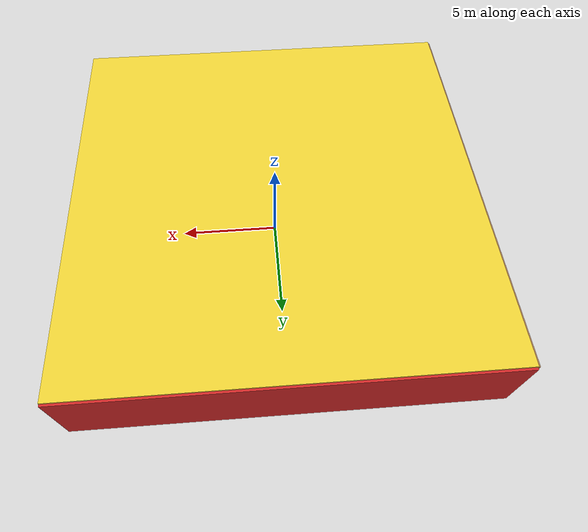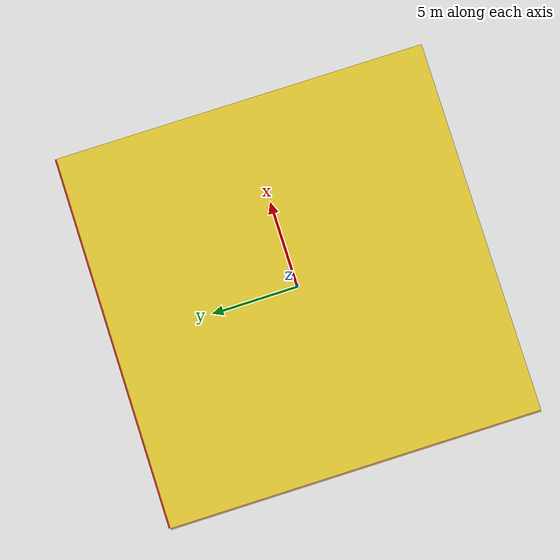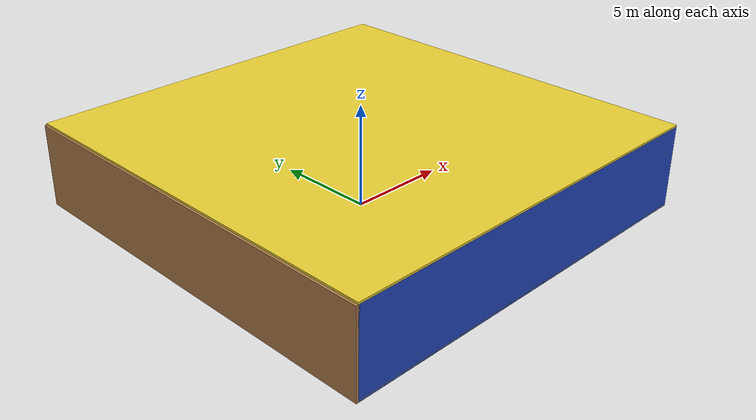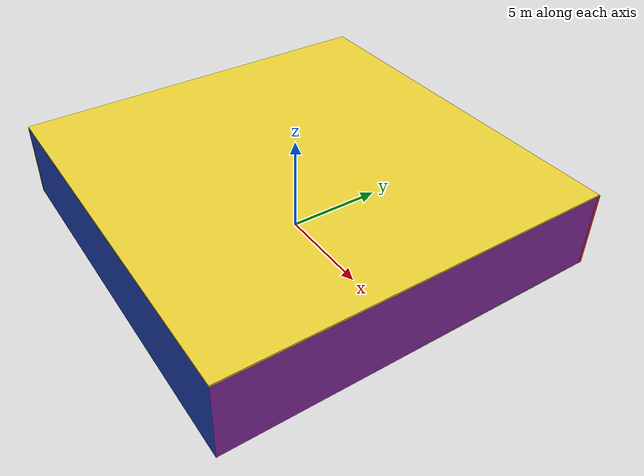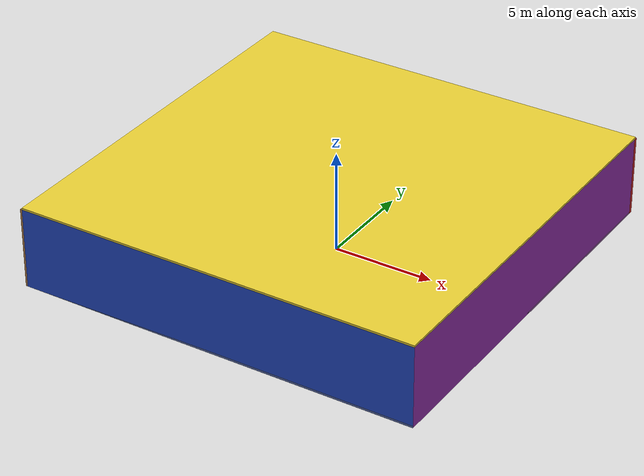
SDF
<sdf version="1.4">
 <world name="default">
  <physics type="ode">
   <max_step_size>0.001</max_step_size>
   <real_time_factor>1</real_time_factor>
   <real_time_update_rate>1000</real_time_update_rate>
   <gravity>0 0 -9.8</gravity>
  </physics>
  <scene><ambient>0.4 0.4 0.4 1</ambient><background>0.7 0.7 0.7 1</background><shadows>1</shadows></scene>
  <model name="Surrounding">
   <static>1</static>
   <link name="Ceiling">
    <collision name="Ceiling_Collision"><geometry><box><size>20 20 0.1</size></box></geometry></collision>
    <visual name="Ceiling_Visual">
     <geometry><box><size>20 20 0.1</size></box></geometry>
     <material>
      <script><uri>file://media/materials/scripts/gazebo.material</uri><name>Gazebo/ZincYellow</name></script>
     </material>
    </visual>
    <pose>0 0 4.05 0 0 0</pose>
   </link>
   <link name="Wall_South">
    <collision name="Wall_South_Collision">
     <geometry><box><size>20 0 4</size></box></geometry>
     <pose>0 0 2 0 -0 0</pose>
    </collision>
    <visual name="Wall_South_Visual">
     <pose>0 0 2 0 -0 0</pose>
     <geometry><box><size>20 0 4</size></box></geometry>
     <material>
      <script><uri>file://media/materials/scripts/gazebo.material</uri><name>Gazebo/BlueGlow</name></script>
     </material>
    </visual>
    <velocity_decay><linear>0</linear><angular>0</angular></velocity_decay>
    <pose>0 -10 0 0 -0 0</pose>
   </link>
   <link name="Wall_East">
    <collision name="Wall_21_Collision">
     <geometry><box><size>20 0 4</size></box></geometry>
     <pose>0 0 2 0 -0 0</pose>
    </collision>
    <visual name="Wall_21_Visual">
     <pose>0 0 2 0 -0 0</pose>
     <geometry><box><size>20 0 4</size></box></geometry>
     <material>
      <script><uri>file://media/materials/scripts/gazebo.material</uri><name>Gazebo/PurpleGlow</name></script>
     </material>
    </visual>
    <velocity_decay><linear>0</linear><angular>0</angular></velocity_decay>
    <pose>10 0 0 0 -0 1.5708</pose>
   </link>
   <link name="Wall_North">
    <collision name="Wall_22_Collision">
     <geometry><box><size>20 0.2 4</size></box></geometry>
     <pose>0 0 2 0 -0 0</pose>
    </collision>
    <visual name="Wall_22_Visual">
     <pose>0 0 2 0 -0 0</pose>
     <geometry><box><size>20 0.2 4</size></box></geometry>
     <material>
      <script><uri>file://media/materials/scripts/gazebo.material</uri><name>Gazebo/Red</name></script>
     </material>
    </visual>
    <velocity_decay><linear>0</linear><angular>0</angular></velocity_decay>
    <pose>0 10 0 0 -0 0</pose>
   </link>
   <link name="Wall_West">
    <collision name="Wall_23_Collision">
     <geometry><box><size>20 0.2 4</size></box></geometry>
     <pose>0 0 2 0 -0 0</pose>
    </collision>
    <visual name="Wall_23_Visual">
     <pose>0 0 2 0 -0 0</pose>
     <geometry><box><size>20 0.2 4</size></box></geometry>
     <material>
      <script><uri>file://media/materials/scripts/gazebo.material</uri><name>Gazebo/WoodFloor</name></script>
     </material>
    </visual>
    <velocity_decay><linear>0</linear><angular>0</angular></velocity_decay>
    <pose>-10 0 0 0 0 -1.5708</pose>
   </link>
   <link name="Ground_link">
    <collision name="collision">
     <pose>0 0 .05 0 -0 0</pose>
     <geometry><box><size>20 20 0.1</size></box></geometry>
    </collision>
    <visual name="visual">
     <pose>0 0 .05 0 -0 0</pose>
     <geometry><box><size>20 20 0.1</size></box></geometry>
     <material>
      <script><uri>file://media/materials/scripts/gazebo.material</uri><name>Gazebo/GreyTransparent</name></script>
     </material>
    </visual>
   </link>
   <static>1</static>
  </model>
  <spherical_coordinates>
   <surface_model>EARTH_WGS84</surface_model>
   <latitude_deg>0</latitude_deg>
   <longitude_deg>0</longitude_deg>
   <elevation>0</elevation>
   <heading_deg>0</heading_deg>
  </spherical_coordinates>
  <light name="lightball_0" type="diffuse">
   <diffuse>0.8 0.8 0.8 1</diffuse>
   <specular>0.2 0.2 0.2 1</specular>
   <attenuation>
    <range>100</range>
    <constant>0.7</constant>
    <linear>0.01</linear>
    <quadratic>0.001</quadratic>
   </attenuation>
   <direction>-0.5 0.1 -0.9</direction>
   <pose>-5.80894387374 1.08245499641 1.51311568054 0 0 0</pose>
  </light>
  <light name="lightball_1" type="diffuse">
   <diffuse>0.8 0.8 0.8 1</diffuse>
   <specular>0.2 0.2 0.2 1</specular>
   <attenuation>
    <range>100</range>
    <constant>0.7</constant>
    <linear>0.01</linear>
    <quadratic>0.001</quadratic>
   </attenuation>
   <direction>-0.5 0.1 -0.9</direction>
   <pose>-7.60871169201 8.4708653568 1.47999151794 0 0 0</pose>
  </light>
  <light name="lightball_2" type="diffuse">
   <diffuse>0.8 0.8 0.8 1</diffuse>
   <specular>0.2 0.2 0.2 1</specular>
   <attenuation>
    <range>100</range>
    <constant>0.7</constant>
    <linear>0.01</linear>
    <quadratic>0.001</quadratic>
   </attenuation>
   <direction>-0.5 0.1 -0.9</direction>
   <pose>-5.24973191949 8.21674738119 3.84630641566 0 0 0</pose>
  </light>
  <light name="lightball_3" type="diffuse">
   <diffuse>0.8 0.8 0.8 1</diffuse>
   <specular>0.2 0.2 0.2 1</specular>
   <attenuation>
    <range>100</range>
    <constant>0.7</constant>
    <linear>0.01</linear>
    <quadratic>0.001</quadratic>
   </attenuation>
   <direction>-0.5 0.1 -0.9</direction>
   <pose>-3.78116634352 0.901314789596 0.845228957179 0 0 0</pose>
  </light>
  <light name="lightball_4" type="diffuse">
   <diffuse>0.8 0.8 0.8 1</diffuse>
   <specular>0.2 0.2 0.2 1</specular>
   <attenuation>
    <range>100</range>
    <constant>0.7</constant>
    <linear>0.01</linear>
    <quadratic>0.001</quadratic>
   </attenuation>
   <direction>-0.5 0.1 -0.9</direction>
   <pose>5.00262585679 6.74235758972 0.624973408892 0 0 0</pose>
  </light>
  <light name="lightball_5" type="diffuse">
   <diffuse>0.8 0.8 0.8 1</diffuse>
   <specular>0.2 0.2 0.2 1</specular>
   <attenuation>
    <range>100</range>
    <constant>0.7</constant>
    <linear>0.01</linear>
    <quadratic>0.001</quadratic>
   </attenuation>
   <direction>-0.5 0.1 -0.9</direction>
   <pose>0.82328385651 -2.2136937865 3.80186408899 0 0 0</pose>
  </light>
  <light name="lightball_6" type="diffuse">
   <diffuse>0.8 0.8 0.8 1</diffuse>
   <specular>0.2 0.2 0.2 1</specular>
   <attenuation>
    <range>100</range>
    <constant>0.7</constant>
    <linear>0.01</linear>
    <quadratic>0.001</quadratic>
   </attenuation>
   <direction>-0.5 0.1 -0.9</direction>
   <pose>4.207474509 3.0202623591 1.93675946884 0 0 0</pose>
  </light>
  <light name="lightball_7" type="diffuse">
   <diffuse>0.8 0.8 0.8 1</diffuse>
   <specular>0.2 0.2 0.2 1</specular>
   <attenuation>
    <range>100</range>
    <constant>0.7</constant>
    <linear>0.01</linear>
    <quadratic>0.001</quadratic>
   </attenuation>
   <direction>-0.5 0.1 -0.9</direction>
   <pose>0.717594014348 -2.43862428678 1.04046598468 0 0 0</pose>
  </light>
  <include>
   <uri>model://textured_shapes</uri>
   <pose>-6.88782756858 -7.36858204159 0 0 0 2.46200180765</pose>
  </include>
  <include><uri>model://cabinet</uri><pose>-4.44804888883 4.75849775293 0 0 0 1.71092969059</pose></include>
  <include><uri>model://table</uri><pose>1.50979001474 -0.762466669193 0 0 0 1.25712021254</pose></include>
  <include><uri>model://cabinet</uri><pose>5.09416027362 -4.08366315281 0 0 0 1.52962189625</pose></include>
  <include>
   <uri>model://textured_shapes</uri>
   <pose>4.00543211593 7.93820043705 0 0 0 1.20981055557</pose>
  </include>
  <include>
   <uri>model://robocup_3Dsim_goal</uri>
   <pose>7.56393463663 -4.44277885114 0 0 0 1.92012618377</pose>
  </include>
 </world>
</sdf>

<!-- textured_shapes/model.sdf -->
<sdf version="1.6">
  <model name="textured_shapes">
    <pose>0 0 0.5 0 0 0</pose>
    <link name="box">
      <pose>0 -1.5 0 0 0 0</pose>
      <collision name="collision">
        <geometry>
          <box>
            <size>1 1 1</size>
          </box>
        </geometry>
      </collision>
      <visual name="visual">
        <geometry>
          <box>
            <size>1 1 1</size>
          </box>
        </geometry>
        <material>
          <script>
            <uri>model://../model_source/models/textured_shapes/materials/scripts</uri>
            <uri>model://../model_source/models/textured_shapes/materials/textures</uri>
            <name>TexturedShape/Squares</name>
          </script>
        </material>
      </visual>
    </link>
    <link name="sphere">
      <collision name="collision">
        <geometry>
          <sphere>
            <radius>0.5</radius>
          </sphere>
        </geometry>
      </collision>
      <visual name="visual">
        <geometry>
          <sphere>
            <radius>0.5</radius>
          </sphere>
        </geometry>
        <material>
          <script>
            <uri>model://../model_source/models/textured_shapes/materials/scripts</uri>
            <uri>model://../model_source/models/textured_shapes/materials/textures</uri>
            <name>TexturedShape/Squares</name>
          </script>
        </material>
      </visual>
    </link>
    <link name="cylinder">
      <pose>0 1.5 0 0 0 0</pose>
      <collision name="collision">
        <geometry>
          <cylinder>
            <radius>0.5</radius>
            <length>1</length>
          </cylinder>
        </geometry>
      </collision>
      <visual name="visual">
        <geometry>
          <cylinder>
            <radius>0.5</radius>
            <length>1</length>
          </cylinder>
        </geometry>
        <material>
          <script>
            <uri>model://../model_source/models/textured_shapes/materials/scripts</uri>
            <uri>model://../model_source/models/textured_shapes/materials/textures</uri>
            <name>TexturedShape/Squares</name>
          </script>
        </material>
      </visual>
    </link>
  </model>
</sdf>

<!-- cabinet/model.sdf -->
<sdf version="1.5">
  <model name="cabinet">
    <static>true</static>
    <link name="cabinet_bottom_plate">
      <inertial>
        <pose>0 0 -1 0 0 0</pose>
        <inertia>
          <ixx>2.050000</ixx>
          <ixy>0</ixy>
          <ixz>0</ixz>
          <iyy>2.050000</iyy>
          <iyz>0</iyz>
          <izz>2.050000</izz>
        </inertia>
        <mass>25.000000</mass>
      </inertial>
      <collision name="cabinet_bottom_plate_geom">
        <pose>0 0 0.010000 0 0 0</pose>
        <geometry>
          <box>
            <size>0.450000 0.450000 0.020000</size>
          </box>
        </geometry>
      </collision>
      <visual name="cabinet_bottom_plate_geom_visual">
        <pose>0 0 0.010000 0 0 0</pose>
        <geometry>
          <box>
            <size>0.450000 0.450000 0.020000</size>
          </box>
        </geometry>
        <material>
          <script>
            <uri>model://media/materials/scripts/gazebo.material</uri>
            <name>Gazebo/Wood</name>
          </script>
        </material>
      </visual>
      <collision name="cabinet_bottom_plate_geom_cabinet_back_plate">
        <pose>0.235000 0 0.510000 0 0 0</pose>
        <geometry>
          <box>
            <size>0.020000 0.450000 1.020000</size>
          </box>
        </geometry>
      </collision>
      <visual name="cabinet_bottom_plate_geom_cabinet_back_plate_visual">
        <pose>0.235000 0 0.510000 0 0 0</pose>
        <geometry>
          <box>
            <size>0.020000 0.450000 1.020000</size>
          </box>
        </geometry>
        <material>
          <script>
            <uri>model://media/materials/scripts/gazebo.material</uri>
            <name>Gazebo/Wood</name>
          </script>
        </material>
      </visual>
      <collision name="cabinet_bottom_plate_geom_cabinet_left_plate">
        <pose>0 0.235000 0.510000 0 0 0</pose>
        <geometry>
          <box>
            <size>0.450000 0.020000 1.020000</size>
          </box>
        </geometry>
      </collision>
      <visual name="cabinet_bottom_plate_geom_cabinet_left_plate_visual">
        <pose>0 0.235000 0.510000 0 0 0</pose>
        <geometry>
          <box>
            <size>0.450000 0.020000 1.020000</size>
          </box>
        </geometry>
        <material>
          <script>
            <uri>model://media/materials/scripts/gazebo.material</uri>
            <name>Gazebo/Wood</name>
          </script>
        </material>
      </visual>
      <collision name="cabinet_bottom_plate_geom_cabinet_middle_plate">
        <pose>0 0 0.510000 0 0 0</pose>
        <geometry>
          <box>
            <size>0.450000 0.450000 0.020000</size>
          </box>
        </geometry>
      </collision>
      <visual name="cabinet_bottom_plate_geom_cabinet_middle_plate_visual">
        <pose>0 0 0.510000 0 0 0</pose>
        <geometry>
          <box>
            <size>0.450000 0.450000 0.020000</size>
          </box>
        </geometry>
        <material>
          <script>
            <uri>model://media/materials/scripts/gazebo.material</uri>
            <name>Gazebo/Wood</name>
          </script>
        </material>
      </visual>
      <collision name="cabinet_bottom_plate_geom_cabinet_right_plate">
        <pose>0 -0.235000 0.510000 0 0 0</pose>
        <geometry>
          <box>
            <size>0.450000 0.020000 1.020000</size>
          </box>
        </geometry>
      </collision>
      <visual name="cabinet_bottom_plate_geom_cabinet_right_plate_visual">
        <pose>0 -0.235000 0.510000 0 0 0</pose>
        <geometry>
          <box>
            <size>0.450000 0.020000 1.020000</size>
          </box>
        </geometry>
        <material>
          <script>
            <uri>model://media/materials/scripts/gazebo.material</uri>
            <name>Gazebo/Wood</name>
          </script>
        </material>
      </visual>
      <collision name="cabinet_bottom_plate_geom_cabinet_top_plate">
        <pose>0 0 1.010000 0 0 0</pose>
        <geometry>
          <box>
            <size>0.450000 0.450000 0.020000</size>
          </box>
        </geometry>
      </collision>
      <visual name="cabinet_bottom_plate_geom_cabinet_top_plate_visual">
        <pose>0 0 1.010000 0 0 0</pose>
        <geometry>
          <box>
            <size>0.450000 0.450000 0.020000</size>
          </box>
        </geometry>
        <material>
          <script>
            <uri>model://media/materials/scripts/gazebo.material</uri>
            <name>Gazebo/Wood</name>
          </script>
        </material>
      </visual>
    </link>
  </model>
</sdf>

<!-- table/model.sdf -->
<sdf version="1.5">
  <model name="table">
    <static>true</static>
    <link name="link">
      <collision name="surface">
        <pose>0 0 1.0 0 0 0</pose>
        <geometry>
          <box>
            <size>1.5 0.8 0.03</size>
          </box>
        </geometry>
        <surface>
          <friction>
            <ode>
              <mu>0.6</mu>
              <mu2>0.6</mu2>
            </ode>
          </friction>
        </surface>
      </collision>
      <visual name="visual1">
        <pose>0 0 1.0 0 0 0</pose>
        <geometry>
          <box>
            <size>1.5 0.8 0.03</size>
          </box>
        </geometry>
        <material>
          <script>
            <uri>model://media/materials/scripts/gazebo.material</uri>
            <name>Gazebo/Wood</name>
          </script>
        </material>
      </visual>
      <collision name="front_left_leg">
        <pose>0.68 0.38 0.5 0 0 0</pose>
        <geometry>
          <cylinder>
            <radius>0.02</radius>
            <length>1.0</length>
          </cylinder>
        </geometry>
      </collision>
      <visual name="front_left_leg">
        <pose>0.68 0.38 0.5 0 0 0</pose>
        <geometry>
          <cylinder>
            <radius>0.02</radius>
            <length>1.0</length>
          </cylinder>
        </geometry>
        <material>
          <script>
            <uri>model://media/materials/scripts/gazebo.material</uri>
            <name>Gazebo/Grey</name>
          </script>
        </material>
      </visual>
      <collision name="front_right_leg">
        <pose>0.68 -0.38 0.5 0 0 0</pose>
        <geometry>
          <cylinder>
            <radius>0.02</radius>
            <length>1.0</length>
          </cylinder>
        </geometry>
      </collision>
      <visual name="front_right_leg">
        <pose>0.68 -0.38 0.5 0 0 0</pose>
        <geometry>
          <cylinder>
            <radius>0.02</radius>
            <length>1.0</length>
          </cylinder>
        </geometry>
        <material>
          <script>
            <uri>model://media/materials/scripts/gazebo.material</uri>
            <name>Gazebo/Grey</name>
          </script>
        </material>
      </visual>
      <collision name="back_right_leg">
        <pose>-0.68 -0.38 0.5 0 0 0</pose>
        <geometry>
          <cylinder>
            <radius>0.02</radius>
            <length>1.0</length>
          </cylinder>
        </geometry>
      </collision>
      <visual name="back_right_leg">
        <pose>-0.68 -0.38 0.5 0 0 0</pose>
        <geometry>
          <cylinder>
            <radius>0.02</radius>
            <length>1.0</length>
          </cylinder>
        </geometry>
        <material>
          <script>
            <uri>model://media/materials/scripts/gazebo.material</uri>
            <name>Gazebo/Grey</name>
          </script>
        </material>
      </visual>
      <collision name="back_left_leg">
        <pose>-0.68 0.38 0.5 0 0 0</pose>
        <geometry>
          <cylinder>
            <radius>0.02</radius>
            <length>1.0</length>
          </cylinder>
        </geometry>
      </collision>
      <visual name="back_left_leg">
        <pose>-0.68 0.38 0.5 0 0 0</pose>
        <geometry>
          <cylinder>
            <radius>0.02</radius>
            <length>1.0</length>
          </cylinder>
        </geometry>
        <material>
          <script>
            <uri>model://media/materials/scripts/gazebo.material</uri>
            <name>Gazebo/Grey</name>
          </script>
        </material>
      </visual>
    </link>
  </model>
</sdf>

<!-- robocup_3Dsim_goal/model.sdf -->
<sdf version="1.5">
  <model name="robocup_3d_goal">
    <static>true</static>
    <link name="left_post">
      <pose>0 1.05 0.45 0 0 0</pose>
      <collision name="collision">
        <geometry>
          <cylinder>
            <radius>0.05</radius>
            <length>0.9</length>
          </cylinder>
        </geometry>
      </collision>
      <visual name="visual">
        <geometry>
          <cylinder>
            <radius>0.05</radius>
            <length>0.9</length>
          </cylinder>
        </geometry>
        <material>
          <script>
            <uri>file://media/materials/scripts/gazebo.material</uri>
            <name>Gazebo/ZincYellow</name>
          </script>
        </material>
      </visual>
    </link>
    <link name="left_support_horiz_lower">
      <pose>0.30 1.05 0.01 0 0 0</pose>
      <collision name="collision">
        <geometry>
          <box>
            <size>0.50 0.02 0.02</size>
          </box>
        </geometry>
      </collision>
      <visual name="visual">
        <geometry>
          <box>
            <size>0.50 0.02 0.02</size>
          </box>
        </geometry>
        <material>
          <script>
            <uri>file://media/materials/scripts/gazebo.material</uri>
            <name>Gazebo/White</name>
          </script>
        </material>
      </visual>
    </link>
    <link name="left_support_horiz_upper">
      <pose>0.30 1.05 0.79 0 0 0</pose>
      <collision name="collision">
        <geometry>
          <box>
            <size>0.50 0.02 0.02</size>
          </box>
        </geometry>
      </collision>
      <visual name="visual">
        <geometry>
          <box>
            <size>0.50 0.02 0.02</size>
          </box>
        </geometry>
        <material>
          <script>
            <uri>file://media/materials/scripts/gazebo.material</uri>
            <name>Gazebo/White</name>
          </script>
        </material>
      </visual>
    </link>
    <link name="left_support_vertical">
      <pose>0.56 1.05 0.4 0 1.5708 0</pose>
      <collision name="collision">
        <geometry>
          <box>
            <size>0.80 0.02 0.02</size>
          </box>
        </geometry>
      </collision>
      <visual name="visual">
        <geometry>
          <box>
            <size>0.80 0.02 0.02</size>
          </box>
        </geometry>
        <material>
          <script>
            <uri>file://media/materials/scripts/gazebo.material</uri>
            <name>Gazebo/White</name>
          </script>
        </material>
      </visual>
    </link>
    <link name="right_support_horiz_lower">
      <pose>0.30 -1.05 0.01 0 0 0</pose>
      <collision name="collision">
        <geometry>
          <box>
            <size>0.50 0.02 0.02</size>
          </box>
        </geometry>
      </collision>
      <visual name="visual">
        <geometry>
          <box>
            <size>0.50 0.02 0.02</size>
          </box>
        </geometry>
        <material>
          <script>
            <uri>file://media/materials/scripts/gazebo.material</uri>
            <name>Gazebo/White</name>
          </script>
        </material>
      </visual>
    </link>
    <link name="right_support_horiz_upper">
      <pose>0.30 -1.05 0.79 0 0 0</pose>
      <collision name="collision">
        <geometry>
          <box>
            <size>0.50 0.02 0.02</size>
          </box>
        </geometry>
      </collision>
      <visual name="visual">
        <geometry>
          <box>
            <size>0.50 0.02 0.02</size>
          </box>
        </geometry>
        <material>
          <script>
            <uri>file://media/materials/scripts/gazebo.material</uri>
            <name>Gazebo/White</name>
          </script>
        </material>
      </visual>
    </link>
    <link name="right_support_vertical">
      <pose>0.56 -1.05 0.4 0 1.5708 0</pose>
      <collision name="collision">
        <geometry>
          <box>
            <size>0.80 0.02 0.02</size>
          </box>
        </geometry>
      </collision>
      <visual name="visual">
        <geometry>
          <box>
            <size>0.80 0.02 0.02</size>
          </box>
        </geometry>
        <material>
          <script>
            <uri>file://media/materials/scripts/gazebo.material</uri>
            <name>Gazebo/White</name>
          </script>
        </material>
      </visual>
    </link>
    <link name="center_support_horiz_lower">
      <pose>0.56 0 0.01 0 1.5708 0</pose>
      <collision name="collision">
        <geometry>
          <box>
            <size>0.02 2.08 0.02</size>
          </box>
        </geometry>
      </collision>
      <visual name="visual">
        <geometry>
          <box>
            <size>0.02 2.08 0.02</size>
          </box>
        </geometry>
        <material>
          <script>
            <uri>file://media/materials/scripts/gazebo.material</uri>
            <name>Gazebo/White</name>
          </script>
        </material>
      </visual>
    </link>
    <link name="center_support_horiz_upper">
      <pose>0.56 0 0.79 0 1.5708 0</pose>
      <collision name="collision">
        <geometry>
          <box>
            <size>0.02 2.08 0.02</size>
          </box>
        </geometry>
      </collision>
      <visual name="visual">
        <geometry>
          <box>
            <size>0.02 2.08 0.02</size>
          </box>
        </geometry>
        <material>
          <script>
            <uri>file://media/materials/scripts/gazebo.material</uri>
            <name>Gazebo/White</name>
          </script>
        </material>
      </visual>
    </link>
    <link name="right_post">
      <pose>0 -1.05 0.45 0 0 0</pose>
      <collision name="collision">
        <geometry>
          <cylinder>
            <radius>0.05</radius>
            <length>0.9</length>
          </cylinder>
        </geometry>
      </collision>
      <visual name="visual">
        <geometry>
          <cylinder>
            <radius>0.05</radius>
            <length>0.9</length>
          </cylinder>
        </geometry>
        <material>
          <script>
            <uri>file://media/materials/scripts/gazebo.material</uri>
            <name>Gazebo/ZincYellow</name>
          </script>
        </material>
      </visual>
    </link>
    <link name="crossbar">
      <pose>0 0 0.85 1.57 1.57 0</pose>
      <collision name="collision">
        <geometry>
          <cylinder>
            <radius>0.05</radius>
            <length>2.0</length>
          </cylinder>
        </geometry>
      </collision>
      <visual name="visual">
        <geometry>
          <cylinder>
            <radius>0.05</radius>
            <length>2.0</length>
          </cylinder>
        </geometry>
        <material>
          <script>
            <uri>file://media/materials/scripts/gazebo.material</uri>
            <name>Gazebo/ZincYellow</name>
          </script>
        </material>
      </visual>
    </link>
    <link name="center_net">
      <pose>0.56 0 0.40 0 0 0</pose>
      <collision name="collision">
        <geometry>
          <box>
            <size>0.01 2.1 0.80</size>
          </box>
        </geometry>
      </collision>
      <visual name="visual">
        <geometry>
          <box>
            <size>0.01 2.1 0.80</size>
          </box>
        </geometry>
        <material>
          <script>
            <uri>model://../model_source/models/robocup09_spl_field/materials/scripts/</uri>
            <uri>model://../model_source/models/robocup09_spl_field/materials/textures/</uri>
            <name>RoboCup/Net</name>
          </script>
        </material>
      </visual>
    </link>
    <link name="left_net">
      <pose>0.30 1.05 0.40 0 0 0</pose>
      <collision name="collision">
        <geometry>
          <box>
            <size>0.50 0.01 0.76</size>
          </box>
        </geometry>
      </collision>
      <visual name="visual">
        <geometry>
          <box>
            <size>0.50 0.01 0.76</size>
          </box>
        </geometry>
        <material>
          <script>
            <uri>model://../model_source/models/robocup09_spl_field/materials/scripts/</uri>
            <uri>model://../model_source/models/robocup09_spl_field/materials/textures/</uri>
            <name>RoboCup/Net</name>
          </script>
        </material>
      </visual>
    </link>
    <link name="right_net">
      <pose>0.30 -1.05 0.40 0 0 0</pose>
      <collision name="collision">
        <geometry>
          <box>
            <size>0.50 0.01 0.76</size>
          </box>
        </geometry>
      </collision>
      <visual name="visual">
        <geometry>
          <box>
            <size>0.50 0.01 0.76</size>
          </box>
        </geometry>
        <material>
          <script>
            <uri>model://../model_source/models/robocup09_spl_field/materials/scripts/</uri>
            <uri>model://../model_source/models/robocup09_spl_field/materials/textures/</uri>
            <name>RoboCup/Net</name>
          </script>
        </material>
      </visual>
    </link>
  </model>
</sdf>
